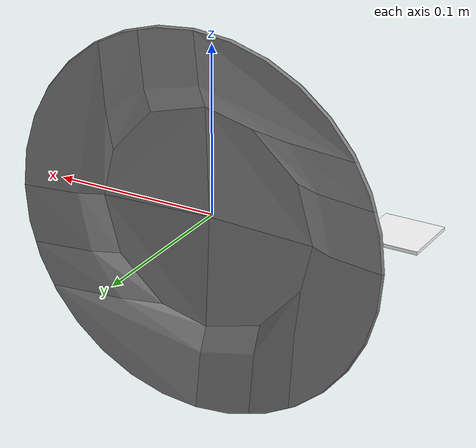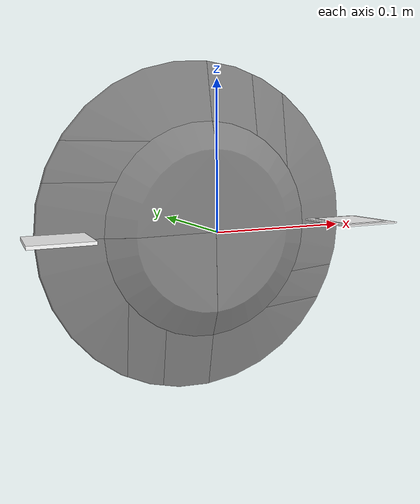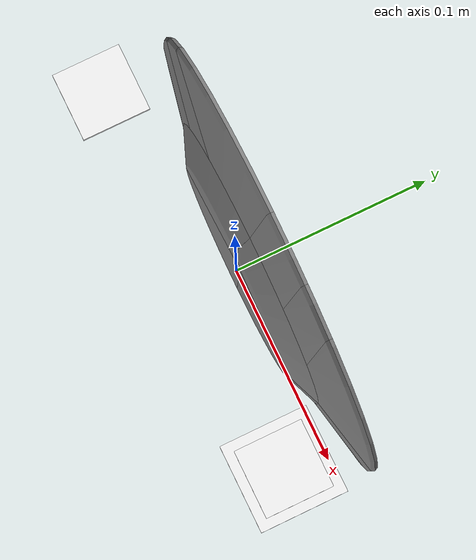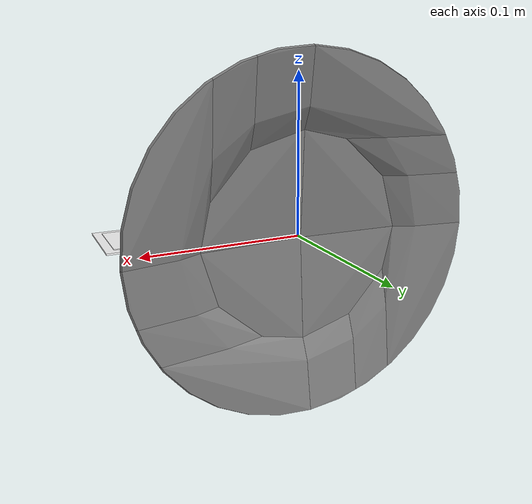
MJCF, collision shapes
<?xml version="1.0" encoding="utf-8"?>
<mujoco model="plate_with_aruco">

    <include file="plate.xml"/>
    <include file="../aruco_markers/aruco_markers.xml"/>

    <worldbody>

        <body name="plate_with_aruco">

            <!-- Central site used for reference or visualization -->
            <site name="center" pos="0 0 0" euler="0 0 0" type="sphere" size="0.0001 0.0001 0.0001" rgba="0.9 0.9 0.9 1" group="4"/>

            <!-- Aruco marker 1 -->-0.06
            <geom name="aruco1_collider" type="box" size="0.0225 0.0225 0.0005" material="card" pos="0.095 -0.021 0.005" euler="0 3.14 1.57" mass="0" rgba="1 1 1 1" contype="0" conaffinity="0" group="3"/>
            <geom type="box" size="0.0175 0.0175 0.001" material="aruco_1" pos="0.095 -0.021 0.005" euler="0 3.14 1.57" rgba="1 1 1 1" contype="0" conaffinity="0" group="3"/>
            <site name="aruco_1" pos="0.095 -0.021 0.005" euler="0 3.14 1.57" type="sphere" size="0.0001" group="4"/>

            <!-- Aruco marker 2 -->
            <geom type="box" size="0.0175 0.0175 0.001" material="aruco_2" pos="-0.105 -0.021 0.005" euler="0 3.14 1.57" rgba="1 1 1 1" contype="0" conaffinity="0" group="3"/>
            <site name="aruco_2" pos="-0.105 -0.021 0.005" euler="0 3.14 1.57" type="sphere" size="0.0001" group="4"/>
        </body>
    </worldbody>
</mujoco>

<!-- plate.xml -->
<mujoco model="plate">
  <compiler angle="radian" meshdir="assets" texturedir="assets" autolimits="true"/>
  <asset>
    <material name="plate" specular="0.5" shininess="0.25"/>
    <mesh file="plate_01.obj"/>
    <mesh file="plate_01_collision_001.obj"/>
    <mesh file="plate_01_collision_002.obj"/>
    <mesh file="plate_01_collision_003.obj"/>
    <mesh file="plate_01_collision_004.obj"/>
    <mesh file="plate_01_collision_005.obj"/>
    <mesh file="plate_01_collision_006.obj"/>
    <mesh file="plate_01_collision_007.obj"/>
    <mesh file="plate_01_collision_008.obj"/>
    <mesh file="plate_01_collision_009.obj"/>
    <mesh file="plate_01_collision_010.obj"/>
    <mesh file="plate_01_collision_011.obj"/>
    <mesh file="plate_01_collision_012.obj"/>
    <mesh file="plate_01_collision_013.obj"/>
    <mesh file="plate_01_collision_014.obj"/>
    <mesh file="plate_01_collision_015.obj"/>
    <mesh file="plate_01_collision_016.obj"/>
  </asset>
  <default>
    <default class="plate">
      <default class="visual">
        <geom type="mesh" contype="0" conaffinity="0" group="2" material="plate"/>
      </default>
      <default class="collision">
        <geom type="mesh" group="3" density="2500" solimp="0.98 0.99 0.001" solref="0.004 1"/>
      </default>
      <geom pos="0.0 0 0" euler="0 1.57 0"/>
    </default>
  </default>
  <worldbody>
    <body name="plate" childclass="plate">
      <geom name="mesh" mesh="plate_01" class="visual"/>
      <geom name="collider_001" mesh="plate_01_collision_001" class="collision"/>
      <geom name="collider_002" mesh="plate_01_collision_002" class="collision"/>
      <geom name="collider_003" mesh="plate_01_collision_003" class="collision"/>
      <geom name="collider_004" mesh="plate_01_collision_004" class="collision"/>
      <geom name="collider_005" mesh="plate_01_collision_005" class="collision"/>
      <geom name="collider_006" mesh="plate_01_collision_006" class="collision"/>
      <geom name="collider_007" mesh="plate_01_collision_007" class="collision"/>
      <geom name="collider_008" mesh="plate_01_collision_008" class="collision"/>
      <geom name="collider_009" mesh="plate_01_collision_009" class="collision"/>
      <geom name="collider_010" mesh="plate_01_collision_010" class="collision"/>
      <geom name="collider_011" mesh="plate_01_collision_011" class="collision"/>
      <geom name="collider_012" mesh="plate_01_collision_012" class="collision"/>
      <geom name="collider_013" mesh="plate_01_collision_013" class="collision"/>
      <geom name="collider_014" mesh="plate_01_collision_014" class="collision"/>
      <geom name="collider_015" mesh="plate_01_collision_015" class="collision"/>
      <geom name="collider_016" mesh="plate_01_collision_016" class="collision"/>
    </body>
  </worldbody>
</mujoco>

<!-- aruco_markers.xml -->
<mujoco>
    <asset>
        <!-- Definition of ArUco Textures -->
        <texture type="2d" name="marker0" file="aruco_4x4_0.png"/>
        <texture type="2d" name="marker1" file="aruco_4x4_1.png"/>
        <texture type="2d" name="marker2" file="aruco_4x4_2.png"/>

        <!-- Definition of Materials Using ArUco Textures -->
        <material name="card"/>
        <material name="aruco_0" texture="marker0"/>
        <material name="aruco_1" texture="marker1"/>
        <material name="aruco_2" texture="marker2"/>
    </asset>
</mujoco>
